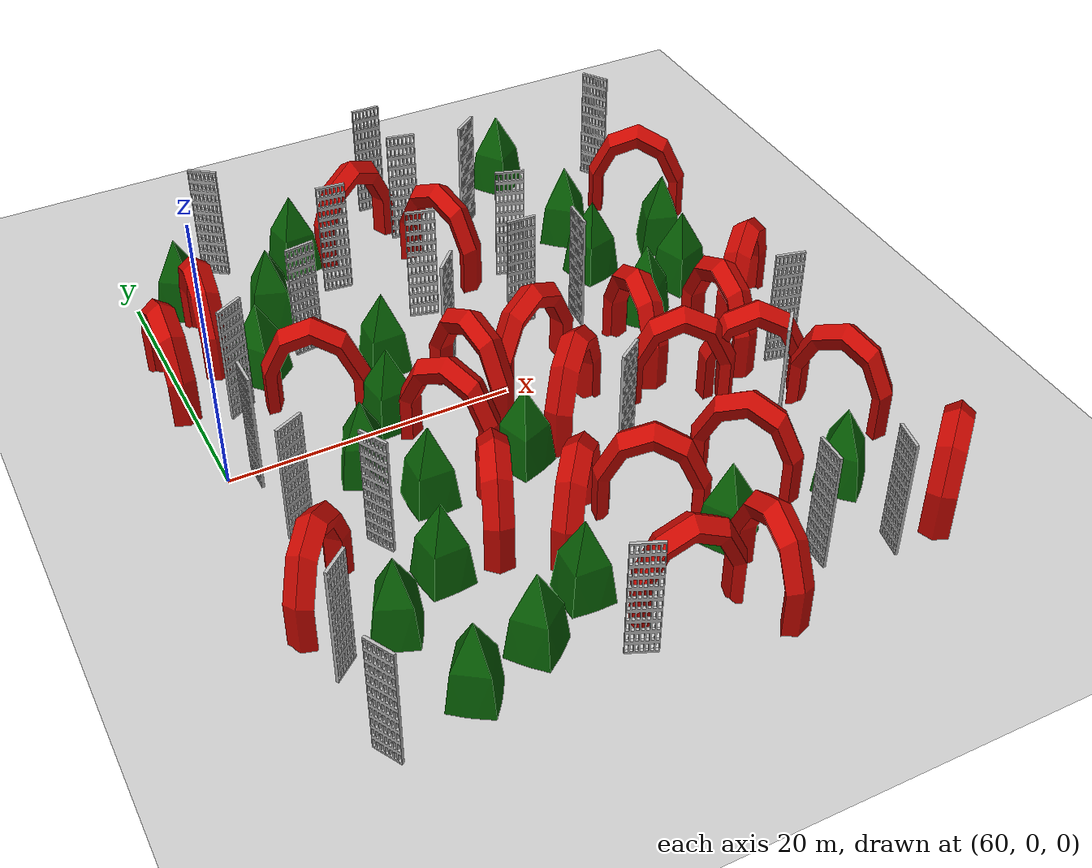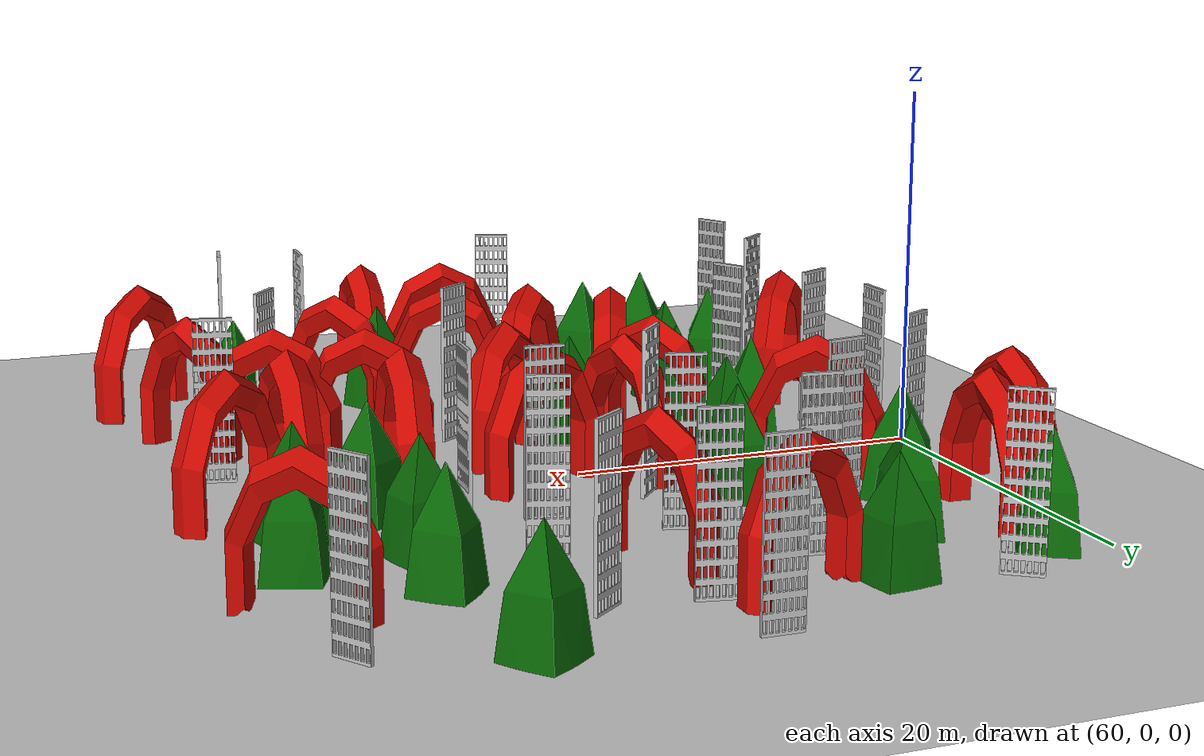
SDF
<sdf version="1.4">
 <world name="default">
  <model name="ground_plane">
   <static>1</static>
   <link name="link">
    <collision name="collision">
     <geometry><plane><normal>0 0 1</normal><size>1000 1000</size></plane></geometry>
     <surface>
      <contact><collide_bitmask>65535</collide_bitmask></contact>
      <friction><ode><mu>100</mu><mu2>50</mu2></ode></friction>
     </surface>
    </collision>
    <visual name="visual">
     <cast_shadows>0</cast_shadows>
     <geometry><plane><normal>0 0 1</normal><size>1000 1000</size></plane></geometry>
    </visual>
   </link>
  </model>
  <include><uri>model://sun</uri></include>
  <include>
   <name>mixedfence_high14</name>
   <uri>model://fence_high</uri>
   <pose>60.31801700592041 -23.50774312019348 0 0 0 3.62793614982</pose>
   <static>true</static>
  </include>
  <include>
   <name>mixedfence_high15</name>
   <uri>model://fence_high</uri>
   <pose>60.062530517578125 -18.509268283843994 0 0 0 5.40678241417</pose>
   <static>true</static>
  </include>
  <include>
   <name>mixedSimple U17</name>
   <uri>model://Simple U</uri>
   <pose>59.59099102020264 10.050289154052734 0 0 0 4.68639869316</pose>
   <static>true</static>
  </include>
  <include>
   <name>mixedSimple U20</name>
   <uri>model://Simple U</uri>
   <pose>61.45296001434326 -12.7576265335083 0 0 0 0.863350599512</pose>
   <static>true</static>
  </include>
  <include>
   <name>mixedfence_high21</name>
   <uri>model://fence_high</uri>
   <pose>61.64790344238281 -6.58125114440918 0 0 0 5.1581035086</pose>
   <static>true</static>
  </include>
  <include>
   <name>mixedfence_high22</name>
   <uri>model://fence_high</uri>
   <pose>61.722755432128906 -1.5768108367919922 0 0 0 0.0103112408371</pose>
   <static>true</static>
  </include>
  <include>
   <name>mixedfence_high23</name>
   <uri>model://fence_high</uri>
   <pose>62.18798351287842 5.771780014038086 0 0 0 5.20068994133</pose>
   <static>true</static>
  </include>
  <include>
   <name>mixedSimple U24</name>
   <uri>model://Simple U</uri>
   <pose>63.236844062805176 13.661373138427734 0 0 0 4.62983569242</pose>
   <static>true</static>
  </include>
  <include>
   <name>mixedSimple Pyramid25</name>
   <uri>model://Simple Pyramid</uri>
   <pose>63.07161235809326 18.95626449584961 0 0 0 1.80242769543</pose>
   <static>true</static>
  </include>
  <include>
   <name>mixedSimple Pyramid26</name>
   <uri>model://Simple Pyramid</uri>
   <pose>66.67852020263672 -22.947996616363525 0 0 0 4.88710937432</pose>
   <static>true</static>
  </include>
  <include>
   <name>mixedSimple Pyramid27</name>
   <uri>model://Simple Pyramid</uri>
   <pose>64.68159198760986 -16.582016944885254 0 0 0 3.47916672852</pose>
   <static>true</static>
  </include>
  <include>
   <name>mixedfence_high28</name>
   <uri>model://fence_high</uri>
   <pose>66.16982650756836 -8.726531982421875 0 0 0 3.64237789648</pose>
   <static>true</static>
  </include>
  <include>
   <name>mixedSimple Pyramid29</name>
   <uri>model://Simple Pyramid</uri>
   <pose>65.72132873535156 9.316566467285156 0 0 0 6.16664844407</pose>
   <static>true</static>
  </include>
  <include>
   <name>mixedfence_high30</name>
   <uri>model://fence_high</uri>
   <pose>67.40893936157227 21.45378875732422 0 0 0 0.94533988703</pose>
   <static>true</static>
  </include>
  <include>
   <name>mixedSimple Pyramid31</name>
   <uri>model://Simple Pyramid</uri>
   <pose>68.89438056945801 -13.879714965820312 0 0 0 2.44484632944</pose>
   <static>true</static>
  </include>
  <include>
   <name>mixedSimple Pyramid32</name>
   <uri>model://Simple Pyramid</uri>
   <pose>70.99389839172363 -7.392984390258789 0 0 0 5.48046540794</pose>
   <static>true</static>
  </include>
  <include>
   <name>mixedSimple Pyramid33</name>
   <uri>model://Simple Pyramid</uri>
   <pose>68.18667411804199 -3.2493724822998047 0 0 0 5.15034109282</pose>
   <static>true</static>
  </include>
  <include>
   <name>mixedSimple U34</name>
   <uri>model://Simple U</uri>
   <pose>67.9395637512207 4.137815475463867 0 0 0 2.60136694119</pose>
   <static>true</static>
  </include>
  <include>
   <name>mixedfence_high35</name>
   <uri>model://fence_high</uri>
   <pose>70.61929893493652 10.346084594726562 0 0 0 1.70867324813</pose>
   <static>true</static>
  </include>
  <include>
   <name>mixedSimple Pyramid36</name>
   <uri>model://Simple Pyramid</uri>
   <pose>68.47673988342285 14.86929702758789 0 0 0 2.11130996126</pose>
   <static>true</static>
  </include>
  <include>
   <name>mixedSimple Pyramid37</name>
   <uri>model://Simple Pyramid</uri>
   <pose>71.41559410095215 -21.332398653030396 0 0 0 3.05554503927</pose>
   <static>true</static>
  </include>
  <include>
   <name>mixedSimple U38</name>
   <uri>model://Simple U</uri>
   <pose>73.43057823181152 -11.764781951904297 0 0 0 4.33924657795</pose>
   <static>true</static>
  </include>
  <include>
   <name>mixedSimple U39</name>
   <uri>model://Simple U</uri>
   <pose>74.17654228210449 -3.5302371978759766 0 0 0 2.14353772719</pose>
   <static>true</static>
  </include>
  <include>
   <name>mixedSimple Pyramid40</name>
   <uri>model://Simple Pyramid</uri>
   <pose>71.67150688171387 0.8027553558349609 0 0 0 5.61626584849</pose>
   <static>true</static>
  </include>
  <include>
   <name>mixedSimple Pyramid41</name>
   <uri>model://Simple Pyramid</uri>
   <pose>73.73694229125977 6.430686950683594 0 0 0 3.89158562659</pose>
   <static>true</static>
  </include>
  <include>
   <name>mixedSimple Pyramid42</name>
   <uri>model://Simple Pyramid</uri>
   <pose>72.298095703125 20.383201599121094 0 0 0 2.49092515469</pose>
   <static>true</static>
  </include>
  <include>
   <name>mixedfence_high43</name>
   <uri>model://fence_high</uri>
   <pose>75.69540977478027 -23.92724084854126 0 0 0 4.31190051416</pose>
   <static>true</static>
  </include>
  <include>
   <name>mixedSimple Pyramid44</name>
   <uri>model://Simple Pyramid</uri>
   <pose>75.80182266235352 -18.92179250717163 0 0 0 5.46625684762</pose>
   <static>true</static>
  </include>
  <include>
   <name>mixedSimple U45</name>
   <uri>model://Simple U</uri>
   <pose>77.74134635925293 -14.307870864868164 0 0 0 4.03679423672</pose>
   <static>true</static>
  </include>
  <include>
   <name>mixedSimple Pyramid46</name>
   <uri>model://Simple Pyramid</uri>
   <pose>77.9446907043457 -6.824337005615234 0 0 0 1.15669988381</pose>
   <static>true</static>
  </include>
  <include>
   <name>mixedSimple U47</name>
   <uri>model://Simple U</uri>
   <pose>77.49781608581543 0.21397972106933594 0 0 0 1.82915427019</pose>
   <static>true</static>
  </include>
  <include>
   <name>mixedfence_high48</name>
   <uri>model://fence_high</uri>
   <pose>75.15316963195801 15.969520568847656 0 0 0 1.46600440381</pose>
   <static>true</static>
  </include>
  <include>
   <name>mixedSimple U49</name>
   <uri>model://Simple U</uri>
   <pose>77.30196189880371 20.48978042602539 0 0 0 0.416950260647</pose>
   <static>true</static>
  </include>
  <include>
   <name>mixedSimple U50</name>
   <uri>model://Simple U</uri>
   <pose>80.72261047363281 -22.595689058303833 0 0 0 3.0258952374</pose>
   <static>true</static>
  </include>
  <include>
   <name>mixedfence_high51</name>
   <uri>model://fence_high</uri>
   <pose>78.5629940032959 5.104320526123047 0 0 0 2.3943030114</pose>
   <static>true</static>
  </include>
  <include>
   <name>mixedfence_high52</name>
   <uri>model://fence_high</uri>
   <pose>79.4976863861084 10.02126693725586 0 0 0 1.30475654358</pose>
   <static>true</static>
  </include>
  <include>
   <name>mixedfence_high53</name>
   <uri>model://fence_high</uri>
   <pose>81.45516967773438 24.735252380371094 0 0 0 1.55198120266</pose>
   <static>true</static>
  </include>
  <include>
   <name>mixedSimple U54</name>
   <uri>model://Simple U</uri>
   <pose>82.7117805480957 -14.895072937011719 0 0 0 5.68972032564</pose>
   <static>true</static>
  </include>
  <include>
   <name>mixedfence_high55</name>
   <uri>model://fence_high</uri>
   <pose>83.16539001464844 -9.91067123413086 0 0 0 5.33222995363</pose>
   <static>true</static>
  </include>
  <include>
   <name>mixedSimple U56</name>
   <uri>model://Simple U</uri>
   <pose>82.5629997253418 -4.895288467407227 0 0 0 3.92162965063</pose>
   <static>true</static>
  </include>
  <include>
   <name>mixedSimple U57</name>
   <uri>model://Simple U</uri>
   <pose>82.45498275756836 0.9042739868164062 0 0 0 3.53493278067</pose>
   <static>true</static>
  </include>
  <include>
   <name>mixedfence_high58</name>
   <uri>model://fence_high</uri>
   <pose>83.3524284362793 6.557369232177734 0 0 0 4.63956268765</pose>
   <static>true</static>
  </include>
  <include>
   <name>mixedSimple U59</name>
   <uri>model://Simple U</uri>
   <pose>81.86531829833984 14.805618286132812 0 0 0 5.08910891961</pose>
   <static>true</static>
  </include>
  <include>
   <name>mixedfence_high60</name>
   <uri>model://fence_high</uri>
   <pose>82.25852584838867 19.795146942138672 0 0 0 1.37449972307</pose>
   <static>true</static>
  </include>
  <include>
   <name>mixedSimple U61</name>
   <uri>model://Simple U</uri>
   <pose>85.5678825378418 -23.850030183792114 0 0 0 1.52584295955</pose>
   <static>true</static>
  </include>
  <include>
   <name>mixedSimple Pyramid62</name>
   <uri>model://Simple Pyramid</uri>
   <pose>86.03432846069336 -18.638161182403564 0 0 0 6.0251395855</pose>
   <static>true</static>
  </include>
  <include>
   <name>mixedfence_high63</name>
   <uri>model://fence_high</uri>
   <pose>88.341064453125 6.152996063232422 0 0 0 3.0914583907</pose>
   <static>true</static>
  </include>
  <include>
   <name>mixedfence_high64</name>
   <uri>model://fence_high</uri>
   <pose>87.29643630981445 11.681194305419922 0 0 0 1.26874830813</pose>
   <static>true</static>
  </include>
  <include>
   <name>mixedfence_high65</name>
   <uri>model://fence_high</uri>
   <pose>87.2495231628418 20.16925048828125 0 0 0 2.22935871875</pose>
   <static>true</static>
  </include>
  <include>
   <name>mixedfence_high66</name>
   <uri>model://fence_high</uri>
   <pose>90.05081939697266 -21.624431371688843 0 0 0 3.1071581858</pose>
   <static>true</static>
  </include>
  <include>
   <name>mixedSimple U67</name>
   <uri>model://Simple U</uri>
   <pose>89.54877853393555 -15.074645042419434 0 0 0 5.41393052124</pose>
   <static>true</static>
  </include>
  <include>
   <name>mixedSimple U68</name>
   <uri>model://Simple U</uri>
   <pose>90.25798416137695 -5.802679061889648 0 0 0 2.71680075216</pose>
   <static>true</static>
  </include>
  <include>
   <name>mixedSimple U69</name>
   <uri>model://Simple U</uri>
   <pose>89.60512924194336 -0.8404407501220703 0 0 0 4.62982380283</pose>
   <static>true</static>
  </include>
  <include>
   <name>mixedSimple Pyramid70</name>
   <uri>model://Simple Pyramid</uri>
   <pose>91.88644790649414 9.685741424560547 0 0 0 1.05985362278</pose>
   <static>true</static>
  </include>
  <include>
   <name>mixedSimple Pyramid71</name>
   <uri>model://Simple Pyramid</uri>
   <pose>92.20893096923828 14.680339813232422 0 0 0 4.78518812067</pose>
   <static>true</static>
  </include>
  <include>
   <name>mixedSimple Pyramid72</name>
   <uri>model://Simple Pyramid</uri>
   <pose>90.84203720092773 23.654056549072266 0 0 0 6.12702490513</pose>
   <static>true</static>
  </include>
  <include>
   <name>mixedfence_high73</name>
   <uri>model://fence_high</uri>
   <pose>94.91786575317383 -22.791434049606323 0 0 0 2.95777564249</pose>
   <static>true</static>
  </include>
  <include>
   <name>mixedSimple Pyramid74</name>
   <uri>model://Simple Pyramid</uri>
   <pose>95.05995559692383 -17.788451671600342 0 0 0 4.66941511338</pose>
   <static>true</static>
  </include>
  <include>
   <name>mixedfence_high75</name>
   <uri>model://fence_high</uri>
   <pose>93.76991271972656 -12.385394096374512 0 0 0 5.59020047749</pose>
   <static>true</static>
  </include>
  <include>
   <name>mixedSimple U76</name>
   <uri>model://Simple U</uri>
   <pose>94.9578857421875 -7.52342414855957 0 0 0 2.67547375441</pose>
   <static>true</static>
  </include>
  <include>
   <name>mixedSimple U77</name>
   <uri>model://Simple U</uri>
   <pose>95.36241149902344 -2.534799575805664 0 0 0 4.74005738938</pose>
   <static>true</static>
  </include>
  <include>
   <name>mixedSimple Pyramid78</name>
   <uri>model://Simple Pyramid</uri>
   <pose>92.6702651977539 3.1161956787109375 0 0 0 6.22426940053</pose>
   <static>true</static>
  </include>
  <include>
   <name>mixedSimple U79</name>
   <uri>model://Simple U</uri>
   <pose>98.77330017089844 -12.2583589553833 0 0 0 5.20117804808</pose>
   <static>true</static>
  </include>
  <include>
   <name>mixedSimple U80</name>
   <uri>model://Simple U</uri>
   <pose>99.26556396484375 0.5981597900390625 0 0 0 3.87764324228</pose>
   <static>true</static>
  </include>
  <include>
   <name>mixedSimple Pyramid81</name>
   <uri>model://Simple Pyramid</uri>
   <pose>97.05786514282227 5.524301528930664 0 0 0 4.25352919687</pose>
   <static>true</static>
  </include>
  <include>
   <name>mixedSimple Pyramid82</name>
   <uri>model://Simple Pyramid</uri>
   <pose>98.2166748046875 10.393302917480469 0 0 0 3.55281213742</pose>
   <static>true</static>
  </include>
  <include>
   <name>mixedSimple U83</name>
   <uri>model://Simple U</uri>
   <pose>98.95450592041016 15.343620300292969 0 0 0 2.51847472837</pose>
   <static>true</static>
  </include>
  <include>
   <name>mixedfence_high84</name>
   <uri>model://fence_high</uri>
   <pose>98.88787460327148 20.348175048828125 0 0 0 0.597073612526</pose>
   <static>true</static>
  </include>
  <include>
   <name>mixedSimple U85</name>
   <uri>model://Simple U</uri>
   <pose>99.88972473144531 -22.216410160064697 0 0 0 3.90998750748</pose>
   <static>true</static>
  </include>
  <include>
   <name>mixedfence_high86</name>
   <uri>model://fence_high</uri>
   <pose>99.67402267456055 -5.847690582275391 0 0 0 1.3522304517</pose>
   <static>true</static>
  </include>
 </world>
</sdf>
